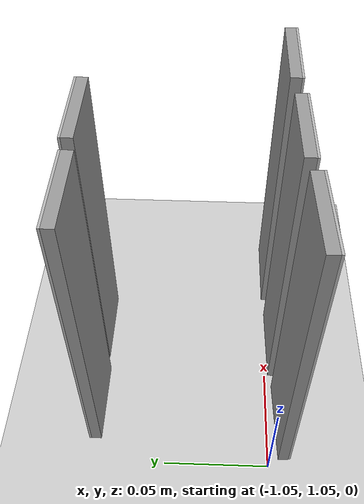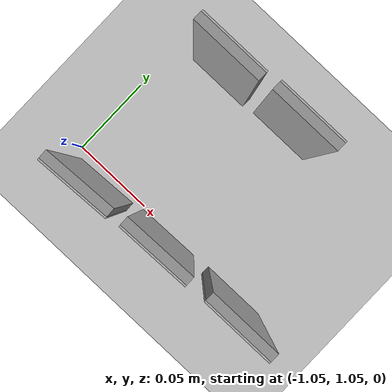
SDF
<sdf version="1.7">
 <world name="default">
  <model name="ground_plane">
   <static>1</static>
   <link name="link">
    <collision name="collision">
     <geometry><plane><normal>0 0 1</normal><size>100 100</size></plane></geometry>
     <surface>
      <contact><collide_bitmask>65535</collide_bitmask></contact>
      <friction><ode><mu>100</mu><mu2>50</mu2></ode></friction>
     </surface>
    </collision>
    <visual name="visual">
     <cast_shadows>0</cast_shadows>
     <geometry><plane><normal>0 0 1</normal><size>4.2 4.2</size></plane></geometry>
     <material><script><uri>file:///home/ros1/桌面/2/png1.material</uri><name>png1</name></script></material>
    </visual>
   </link>
  </model>
  <model name="man-6">
   <link name="link_0">
    <inertial>
     <mass>1</mass>
     <inertia>
      <ixx>0.166667</ixx>
      <ixy>0</ixy>
      <ixz>0</ixz>
      <iyy>0.166667</iyy>
      <iyz>0</iyz>
      <izz>0.166667</izz>
     </inertia>
    </inertial>
    <pose>0 -0.0015 -0 0 -0 0</pose>
    <visual name="visual">
     <geometry><box><size>0.04 0.005 0.15</size></box></geometry>
     <material>
      <lighting>1</lighting>
      <script><uri>file://media/materials/scripts/gazebo.material</uri><name>Gazebo/Grey</name></script>
      <shader type="pixel"><normal_map>__default__</normal_map></shader>
      <ambient>0.3 0.3 0.3 1</ambient>
      <diffuse>0.7 0.7 0.7 1</diffuse>
      <specular>0.01 0.01 0.01 1</specular>
      <emissive>0 0 0 1</emissive>
     </material>
    </visual>
    <collision name="collision">
     <geometry><box><size>0.04 0.005 0.15</size></box></geometry>
     <surface>
      <friction>
       <ode><mu>1</mu><mu2>1</mu2><fdir1>0 0 0</fdir1><slip1>0</slip1><slip2>0</slip2></ode>
       <torsional>
        <coefficient>1</coefficient>
        <patch_radius>0</patch_radius>
        <surface_radius>0</surface_radius>
        <use_patch_radius>1</use_patch_radius>
        <ode><slip>0</slip></ode>
       </torsional>
      </friction>
      <bounce><restitution_coefficient>0</restitution_coefficient><threshold>1e+06</threshold></bounce>
      <contact>
       <collide_without_contact>0</collide_without_contact>
       <collide_without_contact_bitmask>1</collide_without_contact_bitmask>
       <collide_bitmask>1</collide_bitmask>
       <ode>
        <soft_cfm>0</soft_cfm>
        <soft_erp>0.2</soft_erp>
        <kp>1e+13</kp>
        <kd>1</kd>
        <max_vel>0.01</max_vel>
        <min_depth>0</min_depth>
       </ode>
       <bullet>
        <split_impulse>1</split_impulse>
        <split_impulse_penetration_threshold>-0.01</split_impulse_penetration_threshold>
        <soft_cfm>0</soft_cfm>
        <soft_erp>0.2</soft_erp>
        <kp>1e+13</kp>
        <kd>1</kd>
       </bullet>
      </contact>
     </surface>
    </collision>
   </link>
   <link name="link_4">
    <inertial>
     <mass>1</mass>
     <inertia>
      <ixx>0.166667</ixx>
      <ixy>0</ixy>
      <ixz>0</ixz>
      <iyy>0.166667</iyy>
      <iyz>0</iyz>
      <izz>0.166667</izz>
     </inertia>
    </inertial>
    <pose>0 0.0015 -0 0 -0 0</pose>
    <visual name="visual">
     <geometry><box><size>0.04 0.001 0.15</size></box></geometry>
     <material>
      <script><uri>file:///home/ros1/model_editor_models/man-6/man_6.material</uri><name>man_6</name></script>
     </material>
    </visual>
    <collision name="collision">
     <geometry><box><size>0.04 0.001 0.15</size></box></geometry>
     <surface>
      <friction>
       <ode><mu>1</mu><mu2>1</mu2><fdir1>0 0 0</fdir1><slip1>0</slip1><slip2>0</slip2></ode>
       <torsional>
        <coefficient>1</coefficient>
        <patch_radius>0</patch_radius>
        <surface_radius>0</surface_radius>
        <use_patch_radius>1</use_patch_radius>
        <ode><slip>0</slip></ode>
       </torsional>
      </friction>
      <bounce><restitution_coefficient>0</restitution_coefficient><threshold>1e+06</threshold></bounce>
      <contact>
       <collide_without_contact>0</collide_without_contact>
       <collide_without_contact_bitmask>1</collide_without_contact_bitmask>
       <collide_bitmask>1</collide_bitmask>
       <ode>
        <soft_cfm>0</soft_cfm>
        <soft_erp>0.2</soft_erp>
        <kp>1e+13</kp>
        <kd>1</kd>
        <max_vel>0.01</max_vel>
        <min_depth>0</min_depth>
       </ode>
       <bullet>
        <split_impulse>1</split_impulse>
        <split_impulse_penetration_threshold>-0.01</split_impulse_penetration_threshold>
        <soft_cfm>0</soft_cfm>
        <soft_erp>0.2</soft_erp>
        <kp>1e+13</kp>
        <kd>1</kd>
       </bullet>
      </contact>
     </surface>
    </collision>
   </link>
   <static>0</static>
   <pose>-1.02579 1.04198 0.075 -9e-06 7e-06 -3.09878</pose>
  </model>
  <model name="man-7">
   <link name="link_0">
    <inertial>
     <mass>1</mass>
     <inertia>
      <ixx>0.166667</ixx>
      <ixy>0</ixy>
      <ixz>0</ixz>
      <iyy>0.166667</iyy>
      <iyz>0</iyz>
      <izz>0.166667</izz>
     </inertia>
    </inertial>
    <pose>0 -0.0015 -0 0 -0 0</pose>
    <visual name="visual">
     <geometry><box><size>0.04 0.005 0.15</size></box></geometry>
     <material>
      <lighting>1</lighting>
      <script><uri>file://media/materials/scripts/gazebo.material</uri><name>Gazebo/Grey</name></script>
      <shader type="pixel"><normal_map>__default__</normal_map></shader>
      <ambient>0.3 0.3 0.3 1</ambient>
      <diffuse>0.7 0.7 0.7 1</diffuse>
      <specular>0.01 0.01 0.01 1</specular>
      <emissive>0 0 0 1</emissive>
     </material>
    </visual>
    <collision name="collision">
     <geometry><box><size>0.04 0.005 0.15</size></box></geometry>
     <surface>
      <friction>
       <ode><mu>1</mu><mu2>1</mu2><fdir1>0 0 0</fdir1><slip1>0</slip1><slip2>0</slip2></ode>
       <torsional>
        <coefficient>1</coefficient>
        <patch_radius>0</patch_radius>
        <surface_radius>0</surface_radius>
        <use_patch_radius>1</use_patch_radius>
        <ode><slip>0</slip></ode>
       </torsional>
      </friction>
      <bounce><restitution_coefficient>0</restitution_coefficient><threshold>1e+06</threshold></bounce>
      <contact>
       <collide_without_contact>0</collide_without_contact>
       <collide_without_contact_bitmask>1</collide_without_contact_bitmask>
       <collide_bitmask>1</collide_bitmask>
       <ode>
        <soft_cfm>0</soft_cfm>
        <soft_erp>0.2</soft_erp>
        <kp>1e+13</kp>
        <kd>1</kd>
        <max_vel>0.01</max_vel>
        <min_depth>0</min_depth>
       </ode>
       <bullet>
        <split_impulse>1</split_impulse>
        <split_impulse_penetration_threshold>-0.01</split_impulse_penetration_threshold>
        <soft_cfm>0</soft_cfm>
        <soft_erp>0.2</soft_erp>
        <kp>1e+13</kp>
        <kd>1</kd>
       </bullet>
      </contact>
     </surface>
    </collision>
   </link>
   <link name="link_4">
    <inertial>
     <mass>1</mass>
     <inertia>
      <ixx>0.166667</ixx>
      <ixy>0</ixy>
      <ixz>0</ixz>
      <iyy>0.166667</iyy>
      <iyz>0</iyz>
      <izz>0.166667</izz>
     </inertia>
    </inertial>
    <pose>0 0.0015 -0 0 -0 0</pose>
    <visual name="visual">
     <geometry><box><size>0.04 0.001 0.15</size></box></geometry>
     <material>
      <script><uri>file:///home/ros1/model_editor_models/man-7/man_7.material</uri><name>man_7</name></script>
     </material>
    </visual>
    <collision name="collision">
     <geometry><box><size>0.04 0.001 0.15</size></box></geometry>
     <surface>
      <friction>
       <ode><mu>1</mu><mu2>1</mu2><fdir1>0 0 0</fdir1><slip1>0</slip1><slip2>0</slip2></ode>
       <torsional>
        <coefficient>1</coefficient>
        <patch_radius>0</patch_radius>
        <surface_radius>0</surface_radius>
        <use_patch_radius>1</use_patch_radius>
        <ode><slip>0</slip></ode>
       </torsional>
      </friction>
      <bounce><restitution_coefficient>0</restitution_coefficient><threshold>1e+06</threshold></bounce>
      <contact>
       <collide_without_contact>0</collide_without_contact>
       <collide_without_contact_bitmask>1</collide_without_contact_bitmask>
       <collide_bitmask>1</collide_bitmask>
       <ode>
        <soft_cfm>0</soft_cfm>
        <soft_erp>0.2</soft_erp>
        <kp>1e+13</kp>
        <kd>1</kd>
        <max_vel>0.01</max_vel>
        <min_depth>0</min_depth>
       </ode>
       <bullet>
        <split_impulse>1</split_impulse>
        <split_impulse_penetration_threshold>-0.01</split_impulse_penetration_threshold>
        <soft_cfm>0</soft_cfm>
        <soft_erp>0.2</soft_erp>
        <kp>1e+13</kp>
        <kd>1</kd>
       </bullet>
      </contact>
     </surface>
    </collision>
   </link>
   <static>0</static>
   <pose>-0.979135 1.04472 0.074991 -8e-06 2.9e-05 -3.12383</pose>
  </model>
  <model name="F2">
   <link name="link_0">
    <inertial>
     <mass>1</mass>
     <inertia>
      <ixx>0.166667</ixx>
      <ixy>0</ixy>
      <ixz>0</ixz>
      <iyy>0.166667</iyy>
      <iyz>0</iyz>
      <izz>0.166667</izz>
     </inertia>
    </inertial>
    <pose>0 -0.0015 -0 0 -0 0</pose>
    <visual name="visual">
     <geometry><box><size>0.04 0.005 0.15</size></box></geometry>
     <material>
      <lighting>1</lighting>
      <script><uri>file://media/materials/scripts/gazebo.material</uri><name>Gazebo/Grey</name></script>
      <shader type="pixel"><normal_map>__default__</normal_map></shader>
      <ambient>0.3 0.3 0.3 1</ambient>
      <diffuse>0.7 0.7 0.7 1</diffuse>
      <specular>0.01 0.01 0.01 1</specular>
      <emissive>0 0 0 1</emissive>
     </material>
    </visual>
    <collision name="collision">
     <geometry><box><size>0.04 0.005 0.15</size></box></geometry>
     <surface>
      <friction>
       <ode><mu>1</mu><mu2>1</mu2><fdir1>0 0 0</fdir1><slip1>0</slip1><slip2>0</slip2></ode>
       <torsional>
        <coefficient>1</coefficient>
        <patch_radius>0</patch_radius>
        <surface_radius>0</surface_radius>
        <use_patch_radius>1</use_patch_radius>
        <ode><slip>0</slip></ode>
       </torsional>
      </friction>
      <bounce><restitution_coefficient>0</restitution_coefficient><threshold>1e+06</threshold></bounce>
      <contact>
       <collide_without_contact>0</collide_without_contact>
       <collide_without_contact_bitmask>1</collide_without_contact_bitmask>
       <collide_bitmask>1</collide_bitmask>
       <ode>
        <soft_cfm>0</soft_cfm>
        <soft_erp>0.2</soft_erp>
        <kp>1e+13</kp>
        <kd>1</kd>
        <max_vel>0.01</max_vel>
        <min_depth>0</min_depth>
       </ode>
       <bullet>
        <split_impulse>1</split_impulse>
        <split_impulse_penetration_threshold>-0.01</split_impulse_penetration_threshold>
        <soft_cfm>0</soft_cfm>
        <soft_erp>0.2</soft_erp>
        <kp>1e+13</kp>
        <kd>1</kd>
       </bullet>
      </contact>
     </surface>
    </collision>
   </link>
   <link name="link_4">
    <inertial>
     <mass>1</mass>
     <inertia>
      <ixx>0.166667</ixx>
      <ixy>0</ixy>
      <ixz>0</ixz>
      <iyy>0.166667</iyy>
      <iyz>0</iyz>
      <izz>0.166667</izz>
     </inertia>
    </inertial>
    <pose>0 0.0015 -0 0 -0 0</pose>
    <visual name="visual">
     <geometry><box><size>0.04 0.001 0.15</size></box></geometry>
     <material>
      <script><uri>file:///home/ros1/model_editor_models/F2/F2.material</uri><name>F2</name></script>
     </material>
    </visual>
    <collision name="collision">
     <geometry><box><size>0.04 0.001 0.15</size></box></geometry>
     <surface>
      <friction>
       <ode><mu>1</mu><mu2>1</mu2><fdir1>0 0 0</fdir1><slip1>0</slip1><slip2>0</slip2></ode>
       <torsional>
        <coefficient>1</coefficient>
        <patch_radius>0</patch_radius>
        <surface_radius>0</surface_radius>
        <use_patch_radius>1</use_patch_radius>
        <ode><slip>0</slip></ode>
       </torsional>
      </friction>
      <bounce><restitution_coefficient>0</restitution_coefficient><threshold>1e+06</threshold></bounce>
      <contact>
       <collide_without_contact>0</collide_without_contact>
       <collide_without_contact_bitmask>1</collide_without_contact_bitmask>
       <collide_bitmask>1</collide_bitmask>
       <ode>
        <soft_cfm>0</soft_cfm>
        <soft_erp>0.2</soft_erp>
        <kp>1e+13</kp>
        <kd>1</kd>
        <max_vel>0.01</max_vel>
        <min_depth>0</min_depth>
       </ode>
       <bullet>
        <split_impulse>1</split_impulse>
        <split_impulse_penetration_threshold>-0.01</split_impulse_penetration_threshold>
        <soft_cfm>0</soft_cfm>
        <soft_erp>0.2</soft_erp>
        <kp>1e+13</kp>
        <kd>1</kd>
       </bullet>
      </contact>
     </surface>
    </collision>
   </link>
   <static>0</static>
   <pose>-0.928451 1.04611 0.074991 5e-06 -1.5e-05 -3.14148</pose>
  </model>
  <model name="man-16">
   <link name="link_0">
    <inertial>
     <mass>1</mass>
     <inertia>
      <ixx>0.166667</ixx>
      <ixy>0</ixy>
      <ixz>0</ixz>
      <iyy>0.166667</iyy>
      <iyz>0</iyz>
      <izz>0.166667</izz>
     </inertia>
    </inertial>
    <pose>0 -0.0015 -0 0 -0 0</pose>
    <visual name="visual">
     <geometry><box><size>0.04 0.005 0.15</size></box></geometry>
     <material>
      <lighting>1</lighting>
      <script><uri>file://media/materials/scripts/gazebo.material</uri><name>Gazebo/Grey</name></script>
      <shader type="pixel"><normal_map>__default__</normal_map></shader>
      <ambient>0.3 0.3 0.3 1</ambient>
      <diffuse>0.7 0.7 0.7 1</diffuse>
      <specular>0.01 0.01 0.01 1</specular>
      <emissive>0 0 0 1</emissive>
     </material>
    </visual>
    <collision name="collision">
     <geometry><box><size>0.04 0.005 0.15</size></box></geometry>
     <surface>
      <friction>
       <ode><mu>1</mu><mu2>1</mu2><fdir1>0 0 0</fdir1><slip1>0</slip1><slip2>0</slip2></ode>
       <torsional>
        <coefficient>1</coefficient>
        <patch_radius>0</patch_radius>
        <surface_radius>0</surface_radius>
        <use_patch_radius>1</use_patch_radius>
        <ode><slip>0</slip></ode>
       </torsional>
      </friction>
      <bounce><restitution_coefficient>0</restitution_coefficient><threshold>1e+06</threshold></bounce>
      <contact>
       <collide_without_contact>0</collide_without_contact>
       <collide_without_contact_bitmask>1</collide_without_contact_bitmask>
       <collide_bitmask>1</collide_bitmask>
       <ode>
        <soft_cfm>0</soft_cfm>
        <soft_erp>0.2</soft_erp>
        <kp>1e+13</kp>
        <kd>1</kd>
        <max_vel>0.01</max_vel>
        <min_depth>0</min_depth>
       </ode>
       <bullet>
        <split_impulse>1</split_impulse>
        <split_impulse_penetration_threshold>-0.01</split_impulse_penetration_threshold>
        <soft_cfm>0</soft_cfm>
        <soft_erp>0.2</soft_erp>
        <kp>1e+13</kp>
        <kd>1</kd>
       </bullet>
      </contact>
     </surface>
    </collision>
   </link>
   <link name="link_4">
    <inertial>
     <mass>1</mass>
     <inertia>
      <ixx>0.166667</ixx>
      <ixy>0</ixy>
      <ixz>0</ixz>
      <iyy>0.166667</iyy>
      <iyz>0</iyz>
      <izz>0.166667</izz>
     </inertia>
    </inertial>
    <pose>0 0.0015 -0 0 -0 0</pose>
    <visual name="visual">
     <geometry><box><size>0.04 0.001 0.15</size></box></geometry>
     <material>
      <script><uri>file:///home/ros1/model_editor_models/man-16/man_16.material</uri><name>man_16</name></script>
     </material>
    </visual>
    <collision name="collision">
     <geometry><box><size>0.04 0.001 0.15</size></box></geometry>
     <surface>
      <friction>
       <ode><mu>1</mu><mu2>1</mu2><fdir1>0 0 0</fdir1><slip1>0</slip1><slip2>0</slip2></ode>
       <torsional>
        <coefficient>1</coefficient>
        <patch_radius>0</patch_radius>
        <surface_radius>0</surface_radius>
        <use_patch_radius>1</use_patch_radius>
        <ode><slip>0</slip></ode>
       </torsional>
      </friction>
      <bounce><restitution_coefficient>0</restitution_coefficient><threshold>1e+06</threshold></bounce>
      <contact>
       <collide_without_contact>0</collide_without_contact>
       <collide_without_contact_bitmask>1</collide_without_contact_bitmask>
       <collide_bitmask>1</collide_bitmask>
       <ode>
        <soft_cfm>0</soft_cfm>
        <soft_erp>0.2</soft_erp>
        <kp>1e+13</kp>
        <kd>1</kd>
        <max_vel>0.01</max_vel>
        <min_depth>0</min_depth>
       </ode>
       <bullet>
        <split_impulse>1</split_impulse>
        <split_impulse_penetration_threshold>-0.01</split_impulse_penetration_threshold>
        <soft_cfm>0</soft_cfm>
        <soft_erp>0.2</soft_erp>
        <kp>1e+13</kp>
        <kd>1</kd>
       </bullet>
      </contact>
     </surface>
    </collision>
   </link>
   <static>0</static>
   <pose>-0.971226 1.13751 0.074991 -2e-06 1e-05 -5.1e-05</pose>
  </model>
  <model name="man-15">
   <link name="link_0">
    <inertial>
     <mass>1</mass>
     <inertia>
      <ixx>0.166667</ixx>
      <ixy>0</ixy>
      <ixz>0</ixz>
      <iyy>0.166667</iyy>
      <iyz>0</iyz>
      <izz>0.166667</izz>
     </inertia>
    </inertial>
    <pose>0 -0.0015 -0 0 -0 0</pose>
    <visual name="visual">
     <geometry><box><size>0.04 0.005 0.15</size></box></geometry>
     <material>
      <lighting>1</lighting>
      <script><uri>file://media/materials/scripts/gazebo.material</uri><name>Gazebo/Grey</name></script>
      <shader type="pixel"><normal_map>__default__</normal_map></shader>
      <ambient>0.3 0.3 0.3 1</ambient>
      <diffuse>0.7 0.7 0.7 1</diffuse>
      <specular>0.01 0.01 0.01 1</specular>
      <emissive>0 0 0 1</emissive>
     </material>
    </visual>
    <collision name="collision">
     <geometry><box><size>0.04 0.005 0.15</size></box></geometry>
     <surface>
      <friction>
       <ode><mu>1</mu><mu2>1</mu2><fdir1>0 0 0</fdir1><slip1>0</slip1><slip2>0</slip2></ode>
       <torsional>
        <coefficient>1</coefficient>
        <patch_radius>0</patch_radius>
        <surface_radius>0</surface_radius>
        <use_patch_radius>1</use_patch_radius>
        <ode><slip>0</slip></ode>
       </torsional>
      </friction>
      <bounce><restitution_coefficient>0</restitution_coefficient><threshold>1e+06</threshold></bounce>
      <contact>
       <collide_without_contact>0</collide_without_contact>
       <collide_without_contact_bitmask>1</collide_without_contact_bitmask>
       <collide_bitmask>1</collide_bitmask>
       <ode>
        <soft_cfm>0</soft_cfm>
        <soft_erp>0.2</soft_erp>
        <kp>1e+13</kp>
        <kd>1</kd>
        <max_vel>0.01</max_vel>
        <min_depth>0</min_depth>
       </ode>
       <bullet>
        <split_impulse>1</split_impulse>
        <split_impulse_penetration_threshold>-0.01</split_impulse_penetration_threshold>
        <soft_cfm>0</soft_cfm>
        <soft_erp>0.2</soft_erp>
        <kp>1e+13</kp>
        <kd>1</kd>
       </bullet>
      </contact>
     </surface>
    </collision>
   </link>
   <link name="link_4">
    <inertial>
     <mass>1</mass>
     <inertia>
      <ixx>0.166667</ixx>
      <ixy>0</ixy>
      <ixz>0</ixz>
      <iyy>0.166667</iyy>
      <iyz>0</iyz>
      <izz>0.166667</izz>
     </inertia>
    </inertial>
    <pose>0 0.0015 -0 0 -0 0</pose>
    <visual name="visual">
     <geometry><box><size>0.04 0.001 0.15</size></box></geometry>
     <material>
      <script><uri>file:///home/ros1/model_editor_models/man-15/man_15.material</uri><name>man_15</name></script>
     </material>
    </visual>
    <collision name="collision">
     <geometry><box><size>0.04 0.001 0.15</size></box></geometry>
     <surface>
      <friction>
       <ode><mu>1</mu><mu2>1</mu2><fdir1>0 0 0</fdir1><slip1>0</slip1><slip2>0</slip2></ode>
       <torsional>
        <coefficient>1</coefficient>
        <patch_radius>0</patch_radius>
        <surface_radius>0</surface_radius>
        <use_patch_radius>1</use_patch_radius>
        <ode><slip>0</slip></ode>
       </torsional>
      </friction>
      <bounce><restitution_coefficient>0</restitution_coefficient><threshold>1e+06</threshold></bounce>
      <contact>
       <collide_without_contact>0</collide_without_contact>
       <collide_without_contact_bitmask>1</collide_without_contact_bitmask>
       <collide_bitmask>1</collide_bitmask>
       <ode>
        <soft_cfm>0</soft_cfm>
        <soft_erp>0.2</soft_erp>
        <kp>1e+13</kp>
        <kd>1</kd>
        <max_vel>0.01</max_vel>
        <min_depth>0</min_depth>
       </ode>
       <bullet>
        <split_impulse>1</split_impulse>
        <split_impulse_penetration_threshold>-0.01</split_impulse_penetration_threshold>
        <soft_cfm>0</soft_cfm>
        <soft_erp>0.2</soft_erp>
        <kp>1e+13</kp>
        <kd>1</kd>
       </bullet>
      </contact>
     </surface>
    </collision>
   </link>
   <static>0</static>
   <pose>-1.01818 1.13604 0.075 -9e-06 1.3e-05 0.000116</pose>
  </model>
 </world>
</sdf>
